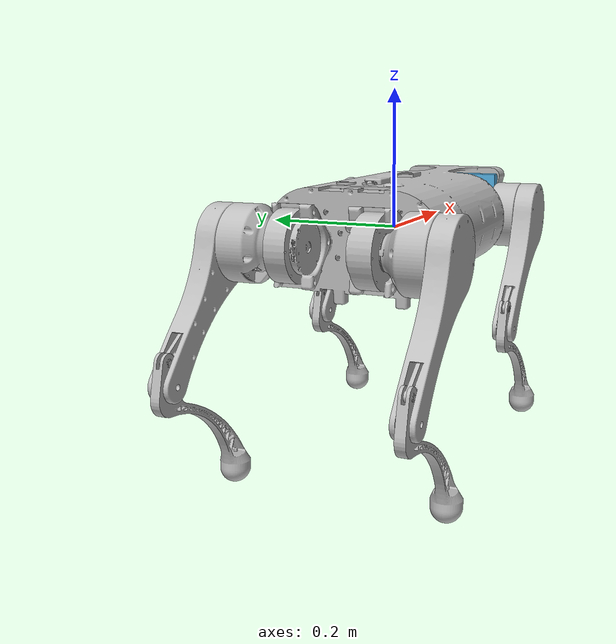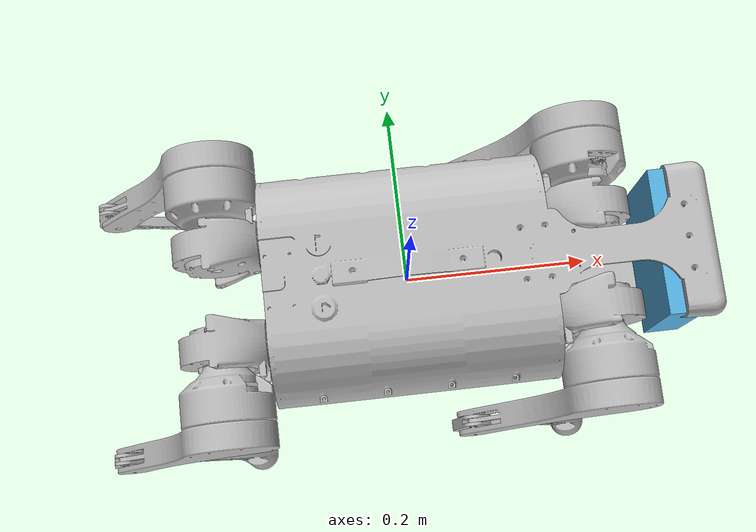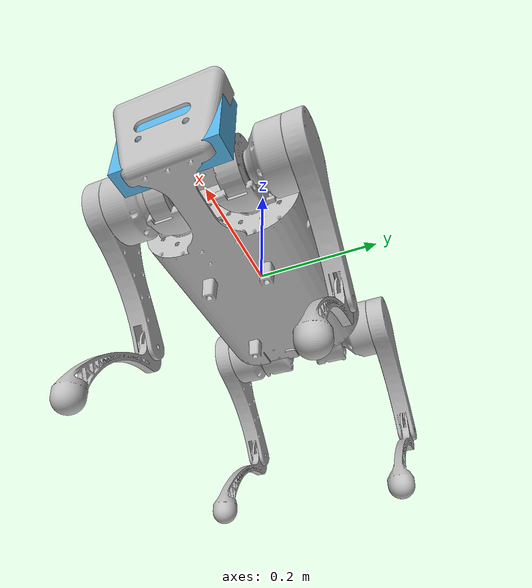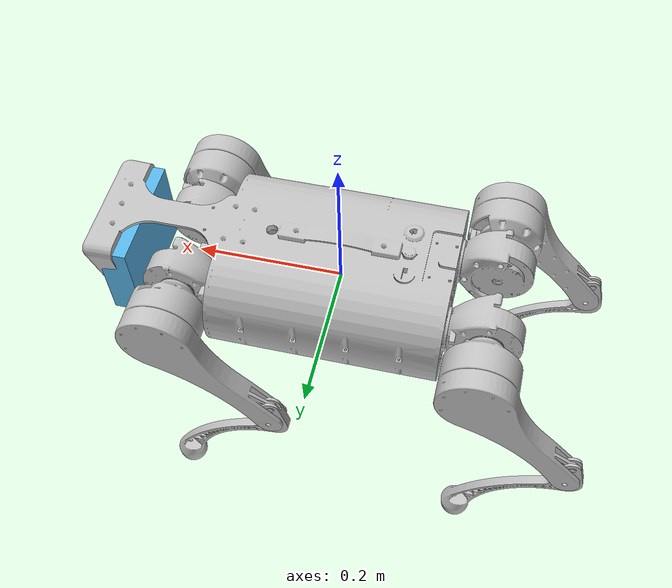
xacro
<?xml version="1.0" encoding="utf-8"?>
<robot name="ask_4" xmlns:xacro="http://www.ros.org/wiki/xacro">
  <xacro:include filename="$(find ask_4_description)/urdf/ask_4.gazebo" />
  <link
    name="base">
    <inertial>
      <origin
        xyz="0.019089 -0.0020479 0.0012749"
        rpy="0 0 0" />
      <mass
        value="6.1035" />
      <inertia
        ixx="0.020213"
        ixy="3.602E-05"
        ixz="-4.2003E-05"
        iyy="0.01508"
        iyz="7.14E-05"
        izz="0.026348" />
    </inertial>
    <visual>
      <origin
        xyz="0 0 0"
        rpy="0 0 0" />
      <geometry>
        <mesh
          filename="package://ask_4_description/meshes/base.STL" />
      </geometry>
      <material
        name="">
        <color
          rgba="0.75294 0.75294 0.75294 1" />
      </material>
    </visual>
    <collision>
      <origin
        xyz="0 0 0"
        rpy="0 0 0" />
      <geometry>
        <box size="0.28 0.2 0.12"/>
      </geometry>
    </collision>
  </link>
  <link
    name="LF_Link1">
    <inertial>
      <origin
        xyz="-0.0052775 -0.00048903 3.0096E-05"
        rpy="0 0 0" />
      <mass
        value="0.68326" />
      <inertia
        ixx="0.00057425"
        ixy="4.8331E-06"
        ixz="4.3966E-07"
        iyy="0.00085904"
        iyz="5.9981E-07"
        izz="0.00046053" />
    </inertial>
    <visual>
      <origin
        xyz="0 0 0"
        rpy="0 0 0" />
      <geometry>
        <mesh
          filename="package://ask_4_description/meshes/LF_Link1.STL" />
      </geometry>
      <material
        name="">
        <color
          rgba="0.75294 0.75294 0.75294 1" />
      </material>
    </visual>
    <collision>
      <origin
        xyz="0 0 0"
        rpy="1.57 0 0" />
      <geometry>
        <cylinder length="0.0665" radius="0.035" />
      </geometry>
    </collision>
  </link>
  <joint
    name="LF_HAA"
    type="revolute">
    <origin
      xyz="0.2105 0.0575 0"
      rpy="0 0 0" />
    <parent
      link="base" />
    <child
      link="LF_Link1" />
    <axis
      xyz="-1 0 0" />
    <limit
      lower="-3.14"
      upper="3.14"
      effort="20"
      velocity="12.5" />
  </joint>
  <link
    name="LF_Link2">
    <inertial>
      <origin
        xyz="-0.014539 -0.024943 -0.015565"
        rpy="0 0 0" />
      <mass
        value="1.3401" />
      <inertia
        ixx="0.0018637"
        ixy="-2.6545E-06"
        ixz="-0.00091924"
        iyy="0.0034371"
        iyz="-1.105E-06"
        izz="0.0018321" />
    </inertial>
    <visual>
      <origin
        xyz="0 0 0"
        rpy="0 0 0" />
      <geometry>
        <mesh
          filename="package://ask_4_description/meshes/LF_Link2.STL" />
      </geometry>
      <material
        name="">
        <color
          rgba="0.75294 0.75294 0.75294 1" />
      </material>
    </visual>
    <collision>
      <origin
        xyz="-0.07 0 -0.07"
        rpy="0 -0.77 0" />
      <geometry>
        <box size="0.2 0.03402 0.0278"/>
      </geometry>
    </collision>
  </link>
  <joint
    name="LF_HFE"
    type="revolute">
    <origin
      xyz="0 0.0975 0"
      rpy="0 0 0" />
    <parent
      link="LF_Link1" />
    <child
      link="LF_Link2" />
    <axis
      xyz="0 -1 0" />
    <limit
      lower="-3.14"
      upper="3.14"
      effort="20"
      velocity="12.5" />
  </joint>
  <link
    name="LF_Link3">
    <inertial>
      <origin
        xyz="0.070809 -2.0359E-06 -0.076408"
        rpy="0 0 0" />
      <mass
        value="0.23118" />
      <inertia
        ixx="0.0007003"
        ixy="-2.8725E-08"
        ixz="0.00068235"
        iyy="0.0014363"
        iyz="3.0135E-08"
        izz="0.00075357" />
    </inertial>
    <visual>
      <origin
        xyz="0 0 0"
        rpy="0 0 0" />
      <geometry>
        <mesh
          filename="package://ask_4_description/meshes/LF_Link3.STL" />
      </geometry>
      <material
        name="">
        <color
          rgba="0.75294 0.75294 0.75294 1" />
      </material>
    </visual>
    <collision>
      <origin
        xyz="0.080280254 0 -0.079704835"
        rpy="0 0.73 0" />
      <geometry>
        <box size="0.18 0.02523 0.013"/>
      </geometry>
    </collision>
  </link>
  <joint
    name="LF_KFE"
    type="revolute">
    <origin
      xyz="-0.14098 0 -0.15565"
      rpy="0 0 0" />
    <parent
      link="LF_Link2" />
    <child
      link="LF_Link3" />
    <axis
      xyz="0 -1 0" />
    <limit
      lower="-3.14"
      upper="3.14"
      effort="20"
      velocity="12.5" />
  </joint>
  <link
    name="LH_Link1">
    <inertial>
      <origin
        xyz="0.0052775 -0.00048903 -3.0096E-05"
        rpy="0 0 0" />
      <mass
        value="0.68326" />
      <inertia
        ixx="0.00057425"
        ixy="-4.8331E-06"
        ixz="4.3966E-07"
        iyy="0.00085904"
        iyz="-5.9981E-07"
        izz="0.00046053" />
    </inertial>
    <visual>
      <origin
        xyz="0 0 0"
        rpy="0 0 0" />
      <geometry>
        <mesh
          filename="package://ask_4_description/meshes/LH_Link1.STL" />
      </geometry>
      <material
        name="">
        <color
          rgba="0.75294 0.75294 0.75294 1" />
      </material>
    </visual>
    <collision>
      <origin
        xyz="0 0 0"
        rpy="1.57 0 0" />
      <geometry>
        <cylinder length="0.0665" radius="0.035" />
      </geometry>
    </collision>
  </link>
  <joint
    name="LH_HAA"
    type="revolute">
    <origin
      xyz="-0.2105 0.0575 0"
      rpy="0 0 0" />
    <parent
      link="base" />
    <child
      link="LH_Link1" />
    <axis
      xyz="1 0 0" />
    <limit
      lower="-3.14"
      upper="3.14"
      effort="20"
      velocity="12.5" />
  </joint>
  <link
    name="LH_Link2">
    <inertial>
      <origin
        xyz="-0.013967 -0.024942 -0.014558"
        rpy="0 0 0" />
      <mass
        value="1.3401" />
      <inertia
        ixx="0.0018663"
        ixy="-1.2859E-06"
        ixz="-0.00091725"
        iyy="0.0034371"
        iyz="-2.1538E-06"
        izz="0.0018295" />
    </inertial>
    <visual>
      <origin
        xyz="0 0 0"
        rpy="0 0 0" />
      <geometry>
        <mesh
          filename="package://ask_4_description/meshes/LH_Link2.STL" />
      </geometry>
      <material
        name="">
        <color
          rgba="0.75294 0.75294 0.75294 1" />
      </material>
    </visual>
    <collision>
      <origin
        xyz="-0.07 0 -0.07"
        rpy="0 -0.77 0" />
      <geometry>
        <box size="0.2 0.03402 0.0278"/>
      </geometry>
    </collision>
  </link>
  <joint
    name="LH_HFE"
    type="revolute">
    <origin
      xyz="0 0.0975 0"
      rpy="0 0 0" />
    <parent
      link="LH_Link1" />
    <child
      link="LH_Link2" />
    <axis
      xyz="0 -1 0" />
    <limit
      lower="-3.14"
      upper="3.14"
      effort="20"
      velocity="12.5" />
  </joint>
  <link
    name="LH_Link3">
    <inertial>
      <origin
        xyz="0.070809 -2.036E-06 -0.076408"
        rpy="0 0 0" />
      <mass
        value="0.23118" />
      <inertia
        ixx="0.0007003"
        ixy="-2.8725E-08"
        ixz="0.00068235"
        iyy="0.0014363"
        iyz="3.0135E-08"
        izz="0.00075357" />
    </inertial>
    <visual>
      <origin
        xyz="0 0 0"
        rpy="0 0 0" />
      <geometry>
        <mesh
          filename="package://ask_4_description/meshes/LH_Link3.STL" />
      </geometry>
      <material
        name="">
        <color
          rgba="0.75294 0.75294 0.75294 1" />
      </material>
    </visual>
    <collision>
      <origin
        xyz="0.080280254 0 -0.079704835"
        rpy="0 0.73 0" />
      <geometry>
        <box size="0.18 0.02523 0.013"/>
      </geometry>
    </collision>
  </link>
  <joint
    name="LH_KFE"
    type="revolute">
    <origin
      xyz="-0.14098 0 -0.15565"
      rpy="0 0 0" />
    <parent
      link="LH_Link2" />
    <child
      link="LH_Link3" />
    <axis
      xyz="0 -1 0" />
    <limit
      lower="-3.14"
      upper="3.14"
      effort="20"
      velocity="12.5" />
  </joint>
  <link
    name="RF_Link1">
    <inertial>
      <origin
        xyz="-0.0052978 0.00048908 1.0286E-05"
        rpy="0 0 0" />
      <mass
        value="0.68326" />
      <inertia
        ixx="0.0005744"
        ixy="-4.6132E-06"
        ixz="4.4702E-07"
        iyy="0.00085904"
        iyz="-3.8107E-07"
        izz="0.00046039" />
    </inertial>
    <visual>
      <origin
        xyz="0 0 0"
        rpy="0 0 0" />
      <geometry>
        <mesh
          filename="package://ask_4_description/meshes/RF_Link1.STL" />
      </geometry>
      <material
        name="">
        <color
          rgba="0.75294 0.75294 0.75294 1" />
      </material>
    </visual>
    <collision>
      <origin
        xyz="0 0 0"
        rpy="1.57 0 0" />
      <geometry>
        <cylinder length="0.0665" radius="0.035" />
      </geometry>
    </collision>
  </link>
  <joint
    name="RF_HAA"
    type="revolute">
    <origin
      xyz="0.2105 -0.0575 0"
      rpy="0 0 0" />
    <parent
      link="base" />
    <child
      link="RF_Link1" />
    <axis
      xyz="-1 0 0" />
    <limit
      lower="-3.14"
      upper="3.14"
      effort="20"
      velocity="12.5" />
  </joint>
  <link
    name="RF_Link2">
    <inertial>
      <origin
        xyz="-0.014894 0.024984 -0.015351"
        rpy="0 0 0" />
      <mass
        value="1.335" />
      <inertia
        ixx="0.001869"
        ixy="3.0442E-06"
        ixz="-0.00090559"
        iyy="0.0034065"
        iyz="2.2226E-06"
        izz="0.0017962" />
    </inertial>
    <visual>
      <origin
        xyz="0 0 0"
        rpy="0 0 0" />
      <geometry>
        <mesh
          filename="package://ask_4_description/meshes/RF_Link2.STL" />
      </geometry>
      <material
        name="">
        <color
          rgba="0.75294 0.75294 0.75294 1" />
      </material>
    </visual>
    <collision>
      <origin
        xyz="-0.07 0 -0.07"
        rpy="0 -0.77 0" />
      <geometry>
        <box size="0.2 0.03402 0.0278"/>
      </geometry>
    </collision>
  </link>
  <joint
    name="RF_HFE"
    type="revolute">
    <origin
      xyz="0 -0.0975 0"
      rpy="0 0 0" />
    <parent
      link="RF_Link1" />
    <child
      link="RF_Link2" />
    <axis
      xyz="0 -1 0" />
    <limit
      lower="-3.14"
      upper="3.14"
      effort="20"
      velocity="12.5" />
  </joint>
  <link
    name="RF_Link3">
    <inertial>
      <origin
        xyz="0.070809 -2.036E-06 -0.076408"
        rpy="0 0 0" />
      <mass
        value="0.23118" />
      <inertia
        ixx="0.0007003"
        ixy="-2.8725E-08"
        ixz="0.00068235"
        iyy="0.0014363"
        iyz="3.0134E-08"
        izz="0.00075357" />
    </inertial>
    <visual>
      <origin
        xyz="0 0 0"
        rpy="0 0 0" />
      <geometry>
        <mesh
          filename="package://ask_4_description/meshes/RF_Link3.STL" />
      </geometry>
      <material
        name="">
        <color
          rgba="0.75294 0.75294 0.75294 1" />
      </material>
    </visual>
    <collision>
      <origin
        xyz="0.080280254 0 -0.079704835"
        rpy="0 0.73 0" />
      <geometry>
        <box size="0.18 0.02523 0.013"/>
      </geometry>
    </collision>
  </link>
  <joint
    name="RF_KFE"
    type="revolute">
    <origin
      xyz="-0.14098 0 -0.15565"
      rpy="0 0 0" />
    <parent
      link="RF_Link2" />
    <child
      link="RF_Link3" />
    <axis
      xyz="0 1 0" />
    <limit
      lower="-3.14"
      upper="3.14"
      effort="20"
      velocity="12.5" />
  </joint>
  <link
    name="RH_Link1">
    <inertial>
      <origin
        xyz="0.0052978 0.00048908 -1.0286E-05"
        rpy="0 0 0" />
      <mass
        value="0.68326" />
      <inertia
        ixx="0.0005744"
        ixy="4.6132E-06"
        ixz="4.4702E-07"
        iyy="0.00085904"
        iyz="3.8107E-07"
        izz="0.00046039" />
    </inertial>
    <visual>
      <origin
        xyz="0 0 0"
        rpy="0 0 0" />
      <geometry>
        <mesh
          filename="package://ask_4_description/meshes/RH_Link1.STL" />
      </geometry>
      <material
        name="">
        <color
          rgba="0.75294 0.75294 0.75294 1" />
      </material>
    </visual>
    <collision>
      <origin
        xyz="0 0 0"
        rpy="1.57 0 0" />
      <geometry>
        <cylinder length="0.0665" radius="0.035" />
      </geometry>
    </collision>
  </link>
  <joint
    name="RH_HAA"
    type="revolute">
    <origin
      xyz="-0.2105 -0.0575 0"
      rpy="0 0 0" />
    <parent
      link="base" />
    <child
      link="RH_Link1" />
    <axis
      xyz="1 0 0" />
    <limit
      lower="-3.14"
      upper="3.14"
      effort="20"
      velocity="12.5" />
  </joint>
  <link
    name="RH_Link2">
    <inertial>
      <origin
        xyz="-0.014839 0.024984 -0.015451"
        rpy="0 0 0" />
      <mass
        value="1.335" />
      <inertia
        ixx="0.0018635"
        ixy="3.1386E-06"
        ixz="-0.00090237"
        iyy="0.0034065"
        iyz="2.1401E-06"
        izz="0.0018017" />
    </inertial>
    <visual>
      <origin
        xyz="0 0 0"
        rpy="0 0 0" />
      <geometry>
        <mesh
          filename="package://ask_4_description/meshes/RH_Link2.STL" />
      </geometry>
      <material
        name="">
        <color
          rgba="0.75294 0.75294 0.75294 1" />
      </material>
    </visual>
    <collision>
      <origin
        xyz="-0.07 0 -0.07"
        rpy="0 -0.77 0" />
      <geometry>
        <box size="0.2 0.03402 0.0278"/>
      </geometry>
    </collision>
  </link>
  <joint
    name="RH_HFE"
    type="revolute">
    <origin
      xyz="0 -0.0975 0"
      rpy="0 0 0" />
    <parent
      link="RH_Link1" />
    <child
      link="RH_Link2" />
    <axis
      xyz="0 -1 0" />
    <limit
      lower="-3.14"
      upper="3.14"
      effort="20"
      velocity="12.5" />
  </joint>
  <link
    name="RH_Link3">
    <inertial>
      <origin
        xyz="0.070809 -2.036E-06 -0.076408"
        rpy="0 0 0" />
      <mass
        value="0.23118" />
      <inertia
        ixx="0.0007003"
        ixy="-2.8725E-08"
        ixz="0.00068235"
        iyy="0.0014363"
        iyz="3.0135E-08"
        izz="0.00075357" />
    </inertial>
    <visual>
      <origin
        xyz="0 0 0"
        rpy="0 0 0" />
      <geometry>
        <mesh
          filename="package://ask_4_description/meshes/RH_Link3.STL" />
      </geometry>
      <material
        name="">
        <color
          rgba="0.75294 0.75294 0.75294 1" />
      </material>
    </visual>
    <collision>
      <origin
        xyz="0.080280254 0 -0.079704835"
        rpy="0 0.73 0" />
      <geometry>
        <box size="0.18 0.02523 0.013"/>
      </geometry>
    </collision>
  </link>
  <joint
    name="RH_KFE"
    type="revolute">
    <origin
      xyz="-0.14098 0 -0.15565"
      rpy="0 0 0" />
    <parent
      link="RH_Link2" />
    <child
      link="RH_Link3" />
    <axis
      xyz="0 -1 0" />
    <limit
      lower="-3.14"
      upper="3.14"
      effort="20"
      velocity="12.5" />
  </joint>

  <link name="LF_foot">
    <collision>
      <origin rpy="0 0 0" xyz="0 0 0"/>
      <geometry>
        <sphere radius="0.021"/>
      </geometry>
    </collision>
  </link>
  <joint name="LF_ankle" type="fixed" dont_collapse="true">
    <parent link="LF_Link3"/>
    <child link="LF_foot"/>
    <origin rpy="0 0 0" xyz="0.14097 0 -0.16335"/>
  </joint>

  <link name="LH_foot">
    <collision>
      <origin rpy="0 0 0" xyz="0 0 0"/>
      <geometry>
        <sphere radius="0.021"/>
      </geometry>
    </collision>
  </link>
  <joint name="LH_ankle" type="fixed" dont_collapse="true">
    <parent link="LH_Link3"/>
    <child link="LH_foot"/>
    <origin rpy="0 0 0" xyz="0.14097 0 -0.16335"/>
  </joint>

  <link name="RF_foot">
    <collision>
      <origin rpy="0 0 0" xyz="0 0 0"/>
      <geometry>
        <sphere radius="0.021"/>
      </geometry>
    </collision>
  </link>
  <joint name="RF_ankle" type="fixed" dont_collapse="true">
    <parent link="RF_Link3"/>
    <child link="RF_foot"/>
    <origin rpy="0 0 0" xyz="0.14097 0 -0.16335"/>
  </joint>

   <link name="RH_foot">
    <collision>
      <origin rpy="0 0 0" xyz="0 0 0"/>
      <geometry>
        <sphere radius="0.021"/>
      </geometry>
    </collision>
  </link>
  <joint name="RH_ankle" type="fixed" dont_collapse="true">
    <parent link="RH_Link3"/>
    <child link="RH_foot"/>
    <origin rpy="0 0 0" xyz="0.14097 0 -0.16335"/>
  </joint>

  <link name="head">
    <visual>
        <origin rpy="0 0 0" xyz="0 0 0" />
        <geometry>
            <box size="0.04 0.16 0.12" />
        </geometry>
    </visual>
    <collision>
        <origin rpy="0 0 0" xyz="0 0 0" />
        <geometry>
            <box size="0.03 0.16 0.12" />
        </geometry>
    </collision>
  </link>

  <joint name="head_joint" type="fixed">
    <origin rpy="0 0 0" xyz="0.29 0 0" />
    <parent link="base" />
    <child link="head" />
  </joint>

   <!-- Gazebo customization -->
  <gazebo reference="RF_foot">
    <kp>1000000.0</kp>
    <kd>100.0</kd>
    <mu1>0.8</mu1>
    <mu2>0.8</mu2>
  </gazebo>

  <gazebo reference="LF_foot">
    <kp>1000000.0</kp>
    <kd>100.0</kd>
    <mu1>0.8</mu1>
    <mu2>0.8</mu2>
  </gazebo>

  <gazebo reference="RH_foot">
    <kp>1000000.0</kp>
    <kd>100.0</kd>
    <mu1>0.8</mu1>
    <mu2>0.8</mu2>
  </gazebo>

  <gazebo reference="LH_foot">
    <kp>1000000.0</kp>
    <kd>100.0</kd>
    <mu1>0.8</mu1>
    <mu2>0.8</mu2>
  </gazebo>
</robot>
